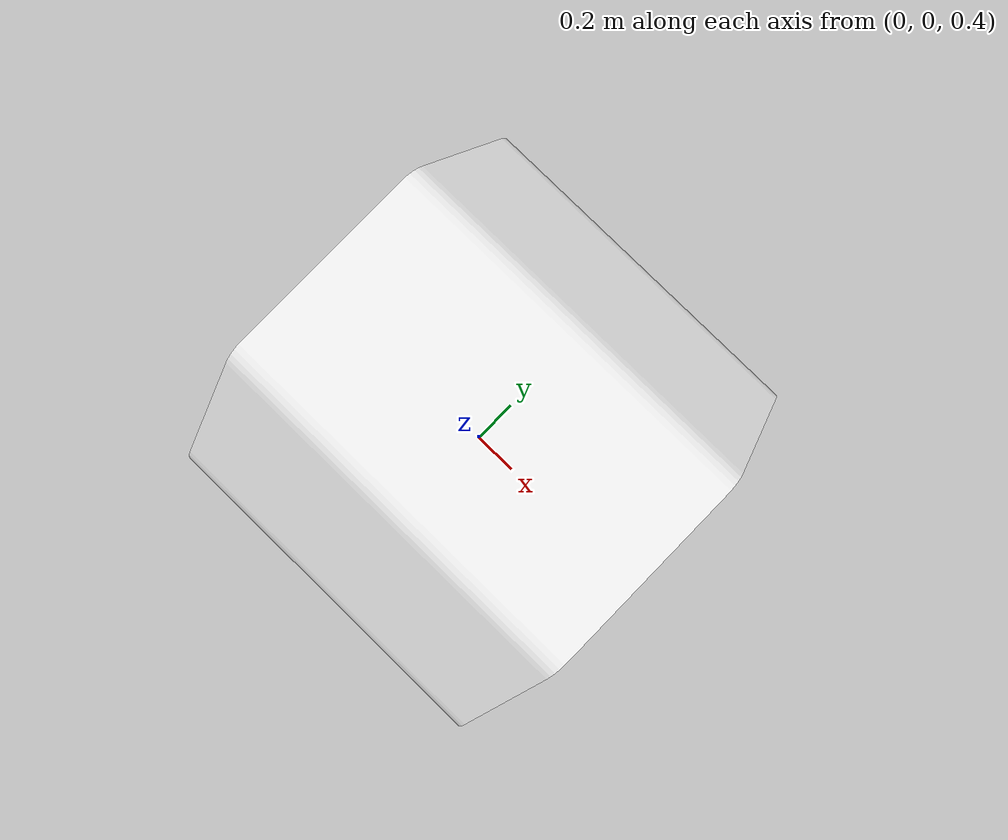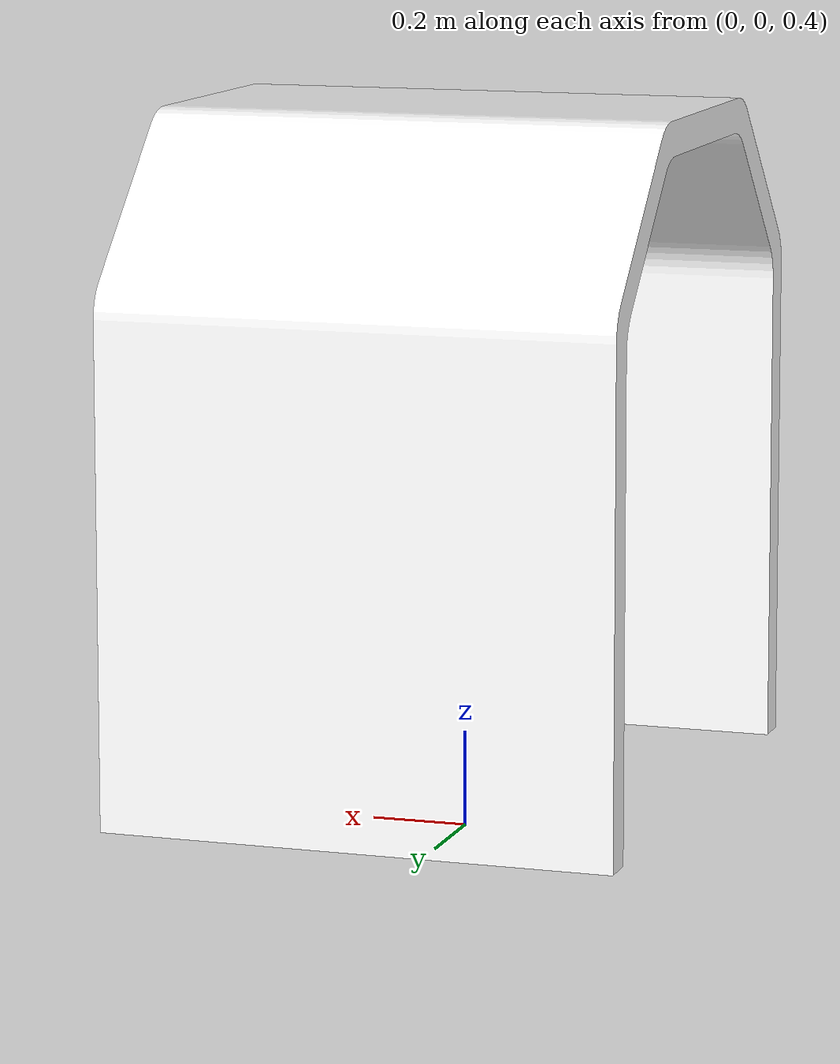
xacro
<?xml version="1.0"?>
<robot xmlns:xacro="http://www.ros.org/wiki/xacro" name="thorvald_arm">

  <!-- Import the materials -->
  <xacro:include filename="materials.xacro"/>
  <xacro:include filename="macros.xacro"/>

  <!-- Base Link -->
  <link name="base_link"/>

  <!-- Arc -->
  <xacro:stl name="arc" filename="Arc.stl"/>
  <joint name="arc_joint" type="fixed">
    <parent link="base_link"/>
    <child link="arc"/>
    <origin xyz="-0.5 0 0.5" rpy="0 0 0"/>
  </joint>

</robot>

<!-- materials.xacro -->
<robot xmlns:xacro="http://www.ros.org/wiki/xacro">

  <!-- Material definition for white color -->
  <xacro:macro name="white_material">
    <material name="white">
      <color rgba="1 1 1 1"/>
    </material>
  </xacro:macro>

</robot>

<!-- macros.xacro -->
<robot xmlns:xacro="http://www.ros.org/wiki/xacro" name="macros">

    <!-- Import the materials -->
    <xacro:include filename="materials.xacro"/>

    <!-- Import stl file as link-->
    <xacro:macro name="stl" params="name filename">
        <link name="${name}">
            <visual>
                <geometry>
                    <mesh filename="package://oxar_is_bored/meshes/${filename}" scale="0.001 0.001 0.001"/>
                </geometry>
                <xacro:white_material/>
            </visual>
        </link>
    </xacro:macro>

</robot>
